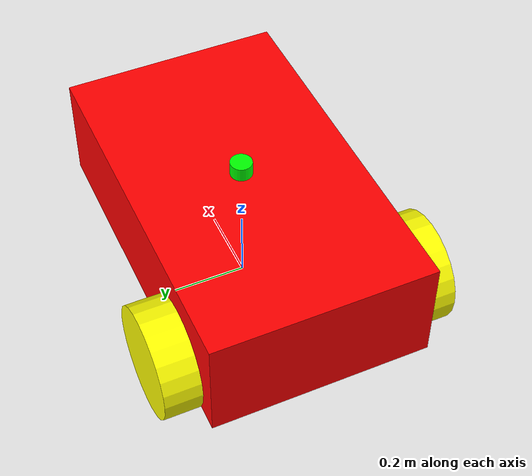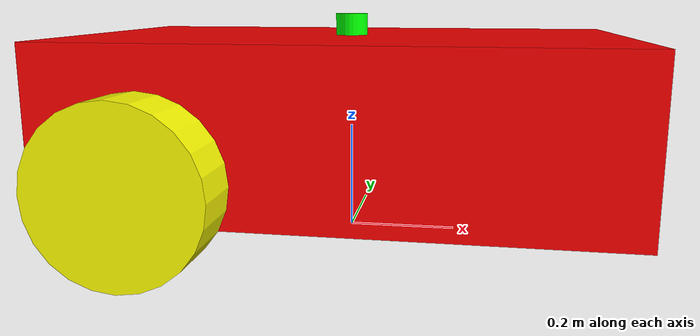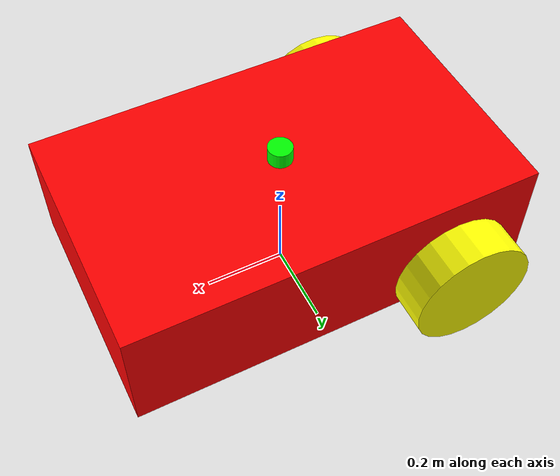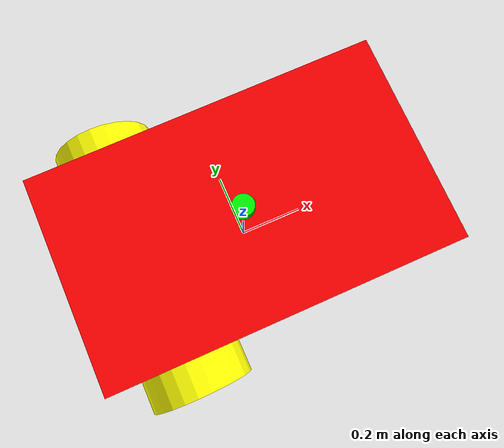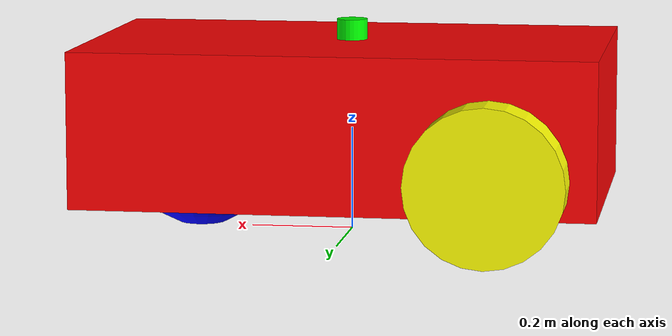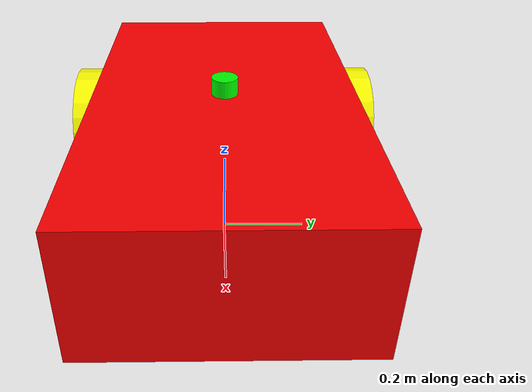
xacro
<?xml version="1.0"?>
<robot name="P.E.K.K.A" xmlns:xacro="http://www.ros.org/wiki/xacro">

    <!-- Body dimensions -->
    <xacro:property name="cuboid_x" value="1.0" />
    <xacro:property name="cuboid_y" value="0.6" />
    <xacro:property name="cuboid_z" value="0.3" />

    <!-- Wheel and caster radius-->
    <xacro:property name="r" value="0.15" />
    <!-- Wheel width -->
    <xacro:property name="wheel_d" value="0.1" />

    <xacro:property name="s1" value="${cuboid_z/2 + r/2}" />
    <xacro:property name="s2" value="${2 * r}" />
    <xacro:property name="s3" value="${2 * r}" />
    <xacro:property name="s4" value="${cuboid_y/2 + wheel_d/2}" />

    <!-- Material density -->
    <xacro:property name="dens_al" value="2712.0" />

    <xacro:include filename="$(find mobile_robot)/model/something.gazebo"/>
    <!-- Robot body mass, wheel mass, caster mass -->
    <!-- Body -->
    <xacro:property name="cuboid_m" value="${dens_al * cuboid_x * cuboid_y * cuboid_z}" />
    <!-- Wheel -->
    <xacro:property name="wheel_m" value="${dens_al * pi * pow(r,2) * wheel_d}" />
    <!-- Caster-->
    <xacro:property name="caster_m" value="${dens_al * (4.0/3.0) * pi * pow(r,3)}" />

    <!-- Moments of inertia of the robot body -->
    <xacro:property name="Ix_body" value="${(1.0/12.0) * cuboid_m * (pow(cuboid_y,2) + pow(cuboid_z,2))}" />
    <xacro:property name="Iy_body" value="${(1.0/12.0) * cuboid_m * (pow(cuboid_x,2) + pow(cuboid_z,2))}" />
    <xacro:property name="Iz_body" value="${(1.0/12.0) * cuboid_m * (pow(cuboid_x,2) + pow(cuboid_y,2))}" />

    <!-- Moments of inertia of the wheel -->
    <xacro:property name="Iz_wheel" value="${(wheel_m*pow(r,2))/2}" />
    <xacro:property name="I_wheel" value="${(1.0/12.0) * wheel_m * (3.0 * pow(r,2) + pow(wheel_d,2))}" />

    <!-- Moments of inertia of the caster sphere -->
    <xacro:property name="I_caster" value="${(2.0/5.0) * caster_m * pow(r,2)}" />

    <xacro:include filename="$(find mobile_robot)/model/something.gazebo"/>

    <!-- Macro to define the inertial section -->
    <xacro:macro name="inertiaMacro" params="mass:=0 Ix:=1 Iy:=1 Iz:=1">
        <inertial>
            <mass value="${mass}" />
            <inertia ixx="${Ix}" ixy="0.0" ixz="0.0" iyy="${Iy}" iyz="0.0" izz="${Iz}" />
        </inertial>
    </xacro:macro>

    <link name="base_footprint"></link>

    <joint name="body_link_joint" type="fixed">
        <parent link="base_footprint" />
        <child link="body_link" />
    </joint>

    <link name="body_link">
        <visual>
            <origin xyz="0 0 ${s1}" rpy="0 0 0" />
            <geometry>
                <box size="${cuboid_x} ${cuboid_y} ${cuboid_z}" />
            </geometry>
            <material name="material_name">
                <color rgba="1 0 0 1" />
            </material>
        </visual>
        <collision>
            <origin xyz="0 0 ${s1}" rpy="0 0 0" />
            <geometry>
                <box size="${cuboid_x} ${cuboid_y} ${cuboid_z}" />
            </geometry>
        </collision>
        <xacro:inertiaMacro mass="${cuboid_m}" Ix="${Ix_body}" Iy="${Iy_body}" Iz="${Iz_body}"/>
    </link>

    <joint name="wheel1_joint" type="continuous">
        <parent link="body_link" />
        <child link="wheel1_link" />
        <origin xyz="${-s2} ${-s4} ${r}" rpy="0 0 0" />
        <axis xyz="0 1 0" />
        <limit effort="5000" velocity="10" />
        <dynamics damping="1.0" friction="1.0" />
    </joint>

    <link name="wheel1_link">
        <visual>
            <origin xyz="0 0 0" rpy="${radians(90)} 0 0" />
            <geometry>
                <cylinder length="${wheel_d}" radius="${r}" />
            </geometry>
            <material name="yellow">
                <color rgba="1 1 0 1" />
            </material>
        </visual>
        <collision>
            <origin xyz="0 0 0" rpy="${radians(90)} 0 0" />
            <geometry>
                <cylinder length="${wheel_d}" radius="${r}" />
            </geometry>
        </collision>
        <xacro:inertiaMacro mass="${wheel_m}" Ix="${I_wheel}" Iy="${I_wheel}" Iz="${Iz_wheel}" />
    </link>

    <joint name="wheel2_joint" type="continuous">
        <parent link="body_link" />
        <child link="wheel2_link" />
        <origin xyz="${-s2} ${s4} ${r}" rpy="0 0 0" />
        <axis xyz="0 1 0" />
    </joint>

    <link name="wheel2_link">
        <visual>
            <origin xyz="0 0 0" rpy="${radians(90)} 0 0" />
            <geometry>
                <cylinder length="${wheel_d}" radius="${r}" />
            </geometry>
            <material name="yellow">
                <color rgba="1 1 0 1" />
            </material>
        </visual>
        <collision>
            <origin xyz="0 0 0" rpy="${radians(90)} 0 0" />
            <geometry>
                <cylinder length="${wheel_d}" radius="${r}" />
            </geometry>
        </collision>
        <xacro:inertiaMacro mass="${wheel_m}" Ix="${I_wheel}" Iy="${I_wheel}" Iz="${Iz_wheel}"/>
    </link>

    <joint name="caster_joint" type="fixed">
        <parent link="body_link" />
        <child link="caster_link" />
        <origin xyz="${s3} 0 ${r}" rpy="0 0 0" />
    </joint>

    <link name="caster_link">
        <visual>
            <origin xyz="0 0 0" rpy="0 0 0" />
            <geometry>
                <sphere radius="${r}" />
            </geometry>
            <material name="blue">
                <color rgba="0 0 1 1" />
            </material>
        </visual>
        <collision>
            <origin xyz="0 0 0" rpy="0 0 0" />
            <geometry>
                <sphere radius="${r}" />
            </geometry>
        </collision>
        <xacro:inertiaMacro mass="${caster_m}" Ix="${I_caster}" Iy="${I_caster}" Iz="${I_caster}"/>
    </link>

    <xacro:property name="cylinder_r" value="0.03"/>
    <xacro:property name="cylinder_z" value="0.04"/>
    <xacro:property name="cylinder_m" value="${dens_al * pi * pow(cylinder_r,2) * cylinder_z}"/>

    <xacro:property name="cylinder_Ix" value="${(1.0/12.0) * cylinder_m * (3 * pow(cylinder_r, 2) + pow(cylinder_z, 2))}"/>
    <xacro:property name="cylinder_Iy" value="${cylinder_Ix}"/>
    <xacro:property name="cylinder_Iz" value="${(1.0/2.0) * cylinder_m * pow(cylinder_r,2)}"/>

    <link name="lidar">
        <visual>
            <geometry>
                <cylinder radius="${cylinder_r}" length="${cylinder_z}"/>
            </geometry>
            <material name="green">
                <color rgba="0 1 0 1"/>
            </material>
        </visual>
        <collision>
            <geometry>
                <cylinder radius="${cylinder_r}" length="${cylinder_z}"/>
            </geometry>
        </collision>
        <inertial> <mass value="0.1"/>
             <inertia ixx="0.0001" ixy="0" ixz="0" iyy="0.0001" iyz="0" izz="0.0001"/>
        </inertial>
    </link>

    <joint name="lidar_joint" type="fixed">
        <parent link="body_link"/>
        <child link="lidar"/>
        <origin xyz="0 0 ${s1 + cuboid_z/2 + cylinder_z/2}" rpy="0 0 0"/>
    </joint>

    <gazebo reference="lidar">
        <sensor name="lidar" type="gpu_lidar">
            <pose>0 0 0 0 0 0</pose>
            <always_on>true</always_on>
            <visualize>true</visualize>
            <update_rate>10</update_rate>
            <topic>scan</topic>
            <ray>
                <scan>
                    <horizontal>
                        <samples>360</samples>
                        <resolution>1</resolution>
                        <min_angle>-3.14159</min_angle>
                        <max_angle>3.14159</max_angle>
                    </horizontal>
                </scan>
                <range>
                    <min>0.10</min>
                    <max>10.0</max>
                    <resolution>0.01</resolution>
                </range>
            </ray>
            <plugin filename="gz-sim-sensors-system" name="gz::sim::systems::Sensors">
                <render_engine>ogre2</render_engine>
            </plugin>
        </sensor>
    </gazebo>

</robot>
